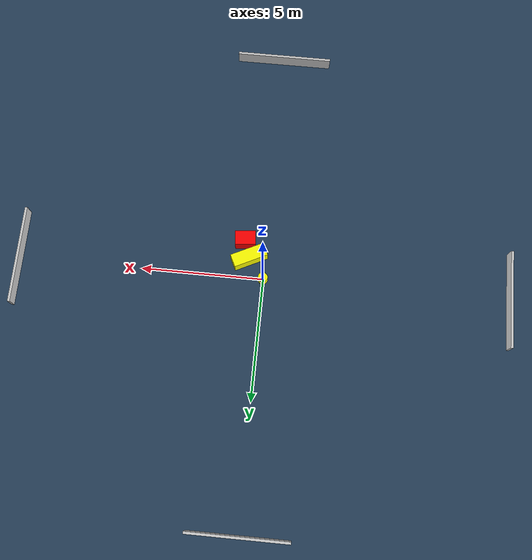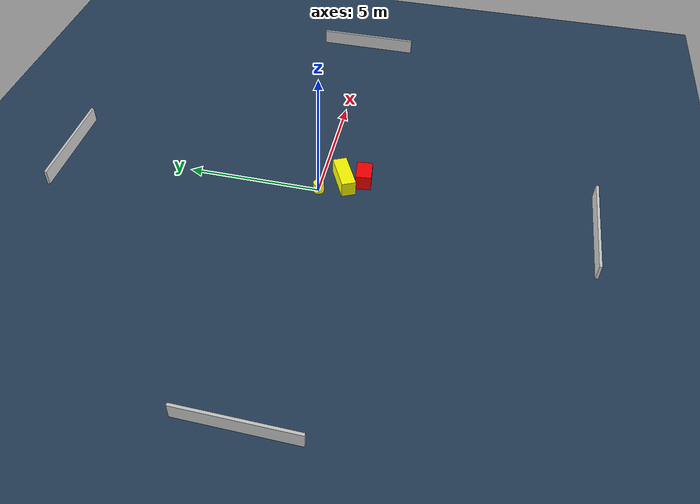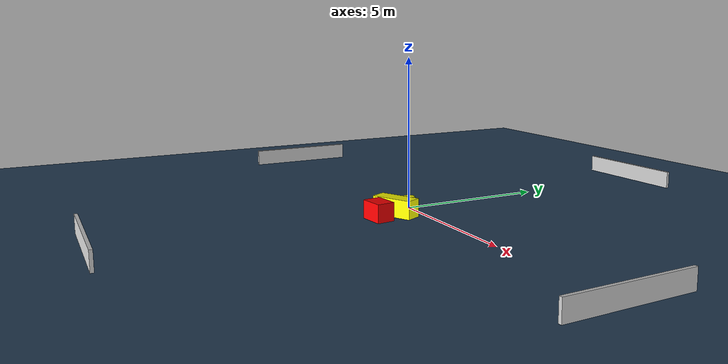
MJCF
<?xml version="1.0" ?>
<mujoco model="generated_environment">
  <option timestep="0.01" integrator="RK4" cone="elliptic"/>
  <default>
    <geom density="1"/>
  </default>
  <asset>
    <texture builtin="gradient" height="3072" name="skybox" rgb1="0.3 0.5 0.7" rgb2="0 0 0" type="skybox" width="512"/>
    <texture builtin="checker" height="300" name="groundplane" rgb1="0.2 0.3 0.4" rgb2="0.1 0.2 0.3" type="2d" width="300"/>
    <material name="groundplane" reflectance="0.2" texrepeat="5 5" texture="groundplane"/>
  </asset>
  <worldbody>
    <light dir="0 0 -1" directional="true" pos="0 0 1.5"/>
    <geom condim="3" friction="0.5 0.005 0.001" material="groundplane" name="floor" pos="0 0 0" size="0 0 0.05" type="plane"/>
    <body name="walls">
      <geom name="wall_1" condim="4" pos="-10.0 0.0 0.3" rgba="0.800000011920929 0.800000011920929 0.800000011920929 1.0" size="0.05 2.0 0.3" type="box"/>
      <geom name="wall_2" condim="4" pos="10.0 0.0 0.3" rgba="0.800000011920929 0.800000011920929 0.800000011920929 1.0" size="0.05 2.0 0.3" type="box"/>
      <geom name="wall_3" condim="4" pos="0.0 -10.0 0.3" rgba="0.800000011920929 0.800000011920929 0.800000011920929 1.0" size="2.0 0.05 0.3" type="box"/>
      <geom name="wall_4" condim="4" pos="0.0 10.0 0.3" rgba="0.800000011920929 0.800000011920929 0.800000011920929 1.0" size="2.0 0.05 0.3" type="box"/>
    </body>
    <body name="robot">
      <joint name="joint_x" type="slide" pos="0 0 0" axis="1 0 0"/>
      <joint name="joint_y" type="slide" pos="0 0 0" axis="0 1 0"/>
      <geom name="robot" type="cylinder" pos="0.0 0.0 0.2" size="0.2 0.2 0.0" mass="5.0" friction="1.0 0.005 0.0001" condim="4" rgba="1.0 1.0 0.0 1.0"/>
    </body>
    <body name="obstacle_1_movable">
      <geom name="obstacle_1_movable" condim="4" pos="0.6405394206188245 -0.831152867061527 0.3" euler="0 0 206.1248294250655" friction="0.0 0.005 0.001" rgba="1.0 1.0 0.0 1.0" size="0.7102651058508125 0.2675315613270351 0.3" type="box" mass="0.1"/>
      <joint type="free"/>
    </body>
    <body name="obstacle_2_static">
      <geom name="obstacle_2_static" condim="4" pos="0.8611312172632557 -1.5478587105538202 0.3" euler="0 0 276.2588299337647" friction="0.0 0.005 0.001" rgba="1.0 0.0 0.0 1.0" size="0.2917526789914909 0.42123552112598067 0.3" type="box"/>
    </body>
  </worldbody>
  <actuator>
    <motor name="actuator_x" joint="joint_x" gear="1" ctrlrange="-1 1"/>
    <motor name="actuator_y" joint="joint_y" gear="1" ctrlrange="-1 1"/>
  </actuator>
</mujoco>
